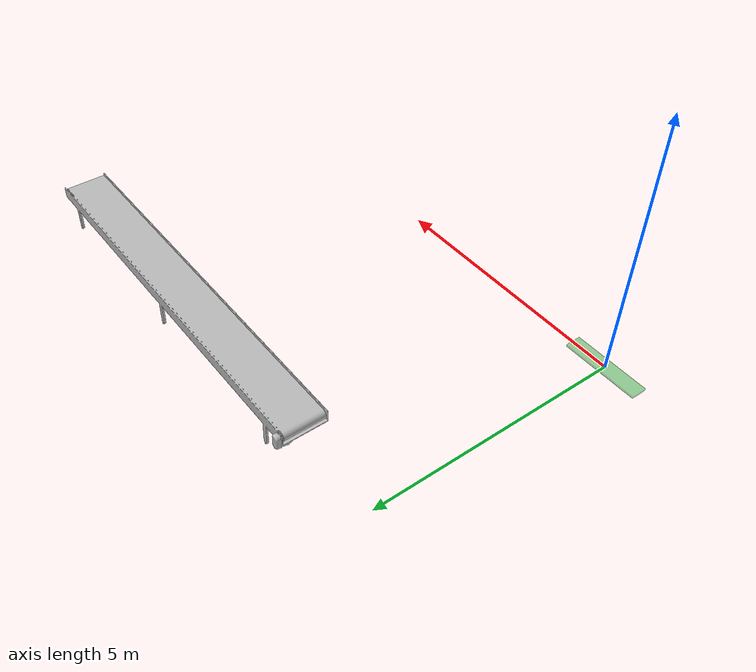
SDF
<?xml version="1.0" ?>
<sdf version="1.6">
    <model name="conveyor_belt">
      <!-- Fixed frame that can be used to refer to the belt's global pose -->
      <model name="conveyor_belt_fixed">
        <static>true</static>
        <pose>0 0 0 0 0 0</pose>
        <link name="link">
          <pose>0 0 0.35 0 0 0</pose>

          <visual name="belt_fixed_visual">
            <geometry>
              <mesh>
                  <uri>file://../meshes/conveyor_belt.dae</uri>
              </mesh>
            </geometry>
          </visual>
        </link>
      </model>

      <!-- Moving component that extends and resets a prismatic joint -->
      <model name="conveyor_belt_moving">
        <allow_auto_disable>0</allow_auto_disable>
        <static>false</static>
        <pose>0 0 0 0 0 0</pose>
        <link name="belt">
          <pose>0 0 0 0 0 0</pose>
          <inertial>
            <inertia>
              <ixx>100</ixx>
              <ixy>0</ixy>
              <ixz>0</ixz>
              <iyy>1781.5</iyy>
              <iyz>0</iyz>
              <izz>1784.72</izz>
            </inertia>
            <mass>100</mass>
          </inertial>
          <!--Uncomment for debugging -->

          <visual name="belt_visual">
            <geometry>
              <box>
                <size>1.5 0.3 0.05</size>
              </box>
            </geometry>
            <material>
              <script>
                <uri>file://media/materials/scripts/gazebo.material</uri>
                <name>Gazebo/GreenTransparent</name>
              </script>
            </material>
          </visual>

          <collision name="belt_collision">
            <geometry>
              <box>
                <size>1.5 0.3 0.05</size>
              </box>
            </geometry>
            <surface>
              <friction>
                <ode>
                  <mu>1.0</mu>
                  <mu2>1.0</mu2>
                </ode>
                <torsional>
                  <coefficient>1000.0</coefficient>
                  <patch_radius>0.1</patch_radius>
                </torsional>
              </friction>
            </surface>
          </collision>
        </link>
      </model>

      <joint name="belt_joint" type="prismatic">
        <parent>conveyor_belt_fixed::link</parent>
        <child>conveyor_belt_moving::belt</child>
        <pose>0 0 0 0 0 0</pose>
        <axis>
          <xyz>1 0 0</xyz>
          <limit>
            <lower>0</lower>
            <upper>1.0</upper>
          </limit>
        </axis>
      </joint>

      <plugin name="conveyor_belt_plugin" filename="libROSConveyorBeltPlugin.so">
        <enable_topic>conveyor_enable</enable_topic>
        <population_rate_modifier_topic>population/rate_modifier</population_rate_modifier_topic>
        <link>conveyor_belt_moving</link>
        <power>0</power>
        <update_rate>10</update_rate>
      </plugin>
    </model>
</sdf>
